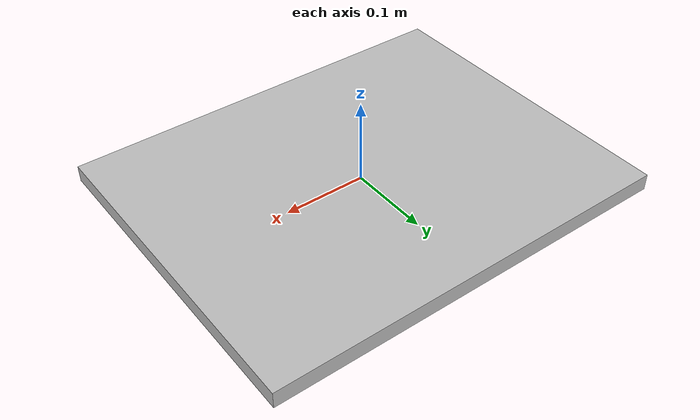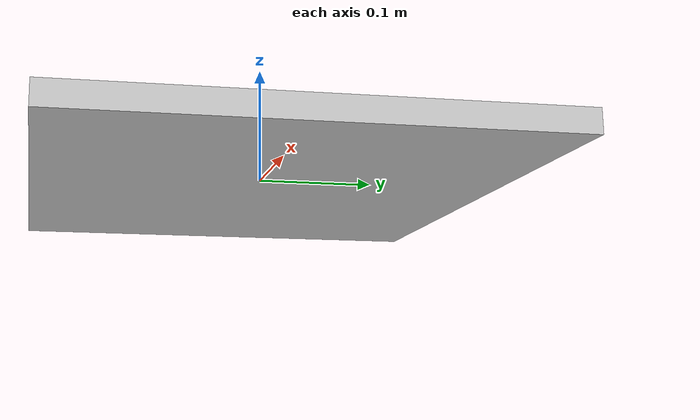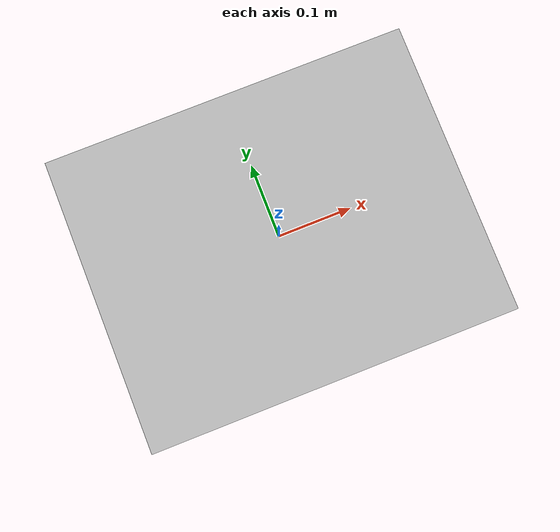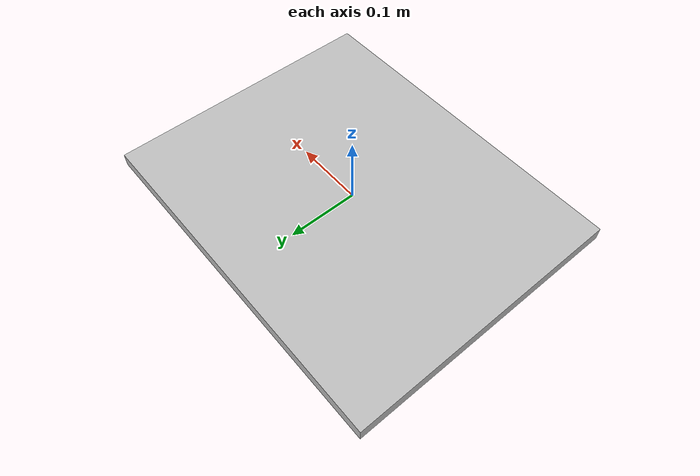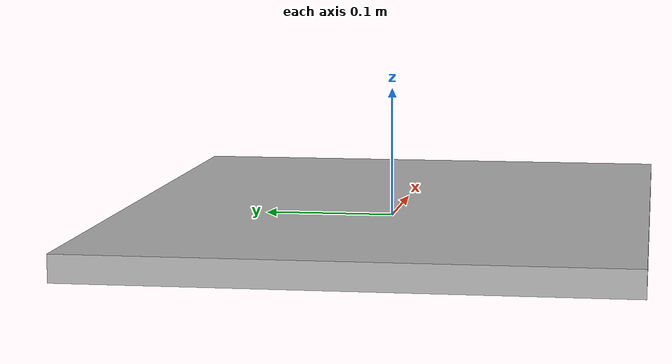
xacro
<?xml version="1.0"?>
<robot name="platform_base" xmlns:xacro="http://www.ros.org/wiki/xacro">

    <!-- PROPERTY LIST -->
    <xacro:property name="base_mass"   value="2" />
    <xacro:property name="base_width"  value="0.40"/>
    <xacro:property name="base_length" value="0.50"/>

    <!-- Defining the colors  -->
    <material name="gray">
        <color rgba="0.75 0.75 0.75 1"/>
    </material>

    <!-- Macro for inertia matrix -->
    <xacro:macro name="sphere_inertial_matrix" params="m r">
        <inertial>
            <mass value="${m}" />
            <inertia ixx="${2*m*r*r/5}" ixy="0" ixz="0"
                     iyy="${2*m*r*r/5}" iyz="0"
                     izz="${2*m*r*r/5}" />
        </inertial>
    </xacro:macro>
    <xacro:macro name="cylinder_inertial_matrix" params="m r h">
        <inertial>
            <mass value="${m}" />
            <inertia ixx="${m*(3*r*r+h*h)/12}" ixy = "0" ixz = "0"
                     iyy="${m*(3*r*r+h*h)/12}" iyz = "0"
                     izz="${m*r*r/2}" />
        </inertial>
    </xacro:macro>
    <xacro:macro name="inertial_matrix" params="mass">
        <inertial>
            <mass value="${mass}" />
            <inertia ixx="1.0" ixy="0.0" ixz="0.0"
                     iyy="1.0" iyz="0.0"
                     izz="1.0" />
        </inertial>
    </xacro:macro>

    <!-- platform base -->
    <link name="plat_base">
        <visual>
            <origin xyz=" 0 0 0" rpy="0 0 0" />
            <geometry>
                <box size="${base_length} ${base_width} 0.02"/>
            </geometry>
            <material name="gray" />
        </visual>
        <collision>
            <origin xyz=" 0 0 0" rpy="0 0 0" />
            <geometry>
                <box size="${base_length} ${base_width} 0.02"/>
            </geometry>
        </collision>
        <xacro:inertial_matrix mass="${base_mass}"/>
    </link>
</robot>
